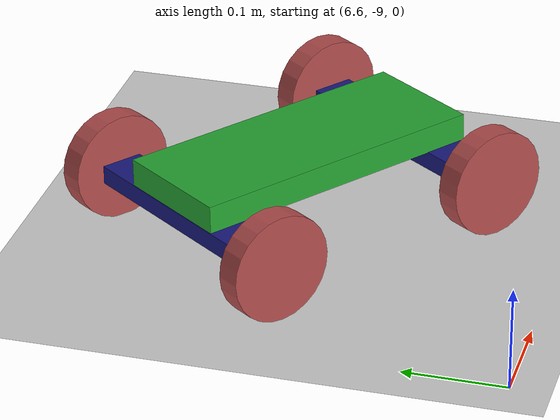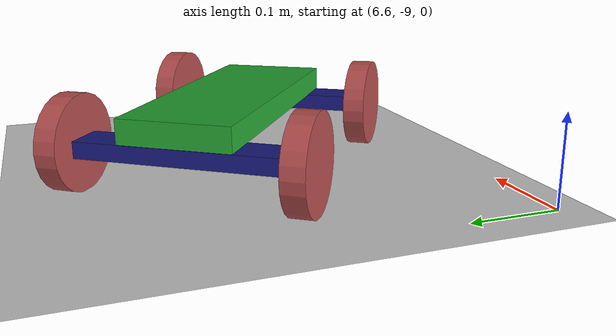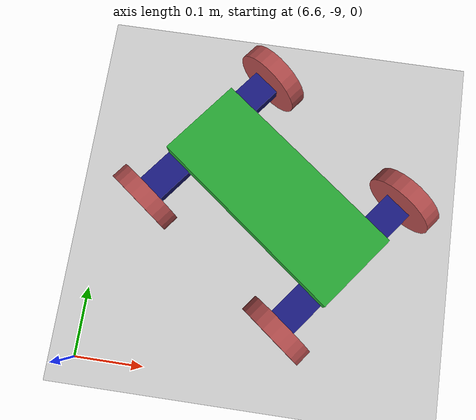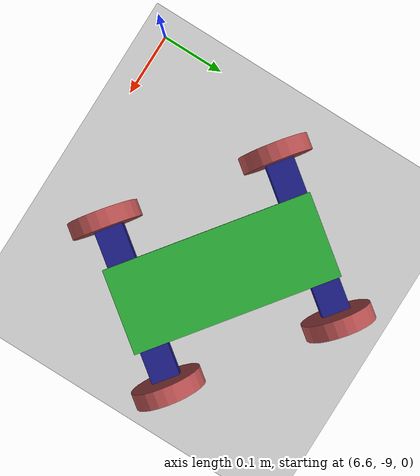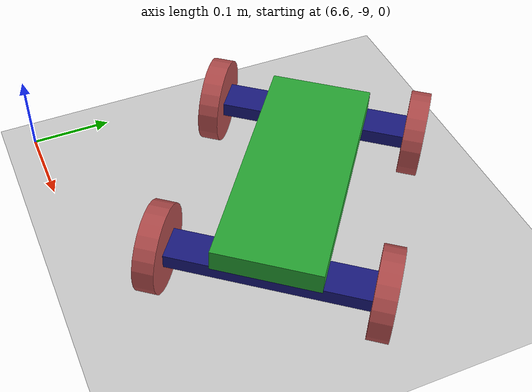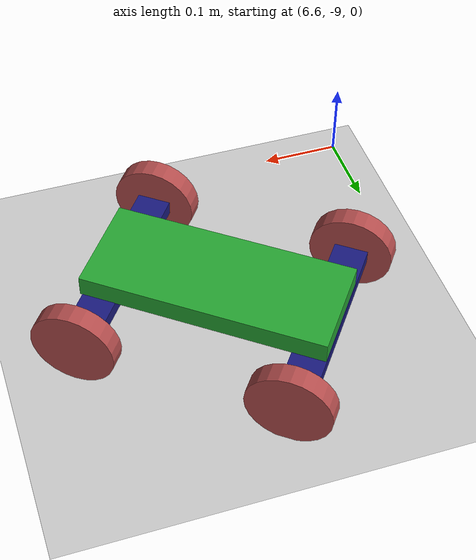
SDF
<sdf version="1.6">
 <world name="default">
  <model name="ground_plane">
   <static>1</static>
   <link name="link">
    <collision name="collision">
     <geometry><plane><normal>0 0 1</normal><size>100 100</size></plane></geometry>
     <surface><friction><ode><mu>100</mu><mu2>50</mu2></ode></friction></surface>
    </collision>
    <visual name="visual">
     <cast_shadows>0</cast_shadows>
     <geometry><plane><normal>0 0 1</normal><size>100 100</size></plane></geometry>
     <material>
      <script><uri>file://media/materials/scripts/gazebo.material</uri><name>Gazebo/Grey</name></script>
     </material>
    </visual>
   </link>
  </model>
  <model name="enwheer_0">
   <link name="link_0">
    <pose>0.246758 -0.006744 0.04096 0 -0 0</pose>
    <inertial>
     <mass>0.901262</mass>
     <inertia>
      <ixx>1.42341e-06</ixx>
      <ixy>0</ixy>
      <ixz>0</ixz>
      <iyy>8.35922e-06</iyy>
      <iyz>0</iyz>
      <izz>9.65174e-06</izz>
     </inertia>
    </inertial>
    <visual name="visual">
     <geometry><box><size>0.306687 0.125276 0.027544</size></box></geometry>
     <material>
      <lighting>1</lighting>
      <script><uri>file://media/materials/scripts/gazebo.material</uri><name>Gazebo/Green</name></script>
      <ambient>0.4 0.8 0.6 1</ambient>
      <diffuse>0.4 0.8 0.9 1</diffuse>
      <specular>0.41 0.81 0.81 1</specular>
      <emissive>0 0 0 1</emissive>
      <shader type="vertex"><normal_map>__default__</normal_map></shader>
     </material>
    </visual>
    <collision name="collision">
     <geometry><box><size>0.306687 0.125276 0.027544</size></box></geometry>
     <surface>
      <friction>
       <ode><mu>1</mu><mu2>1</mu2><fdir1>0 0 0</fdir1><slip1>0</slip1><slip2>0</slip2></ode>
       <torsional>
        <coefficient>1</coefficient>
        <patch_radius>0</patch_radius>
        <surface_radius>0</surface_radius>
        <use_patch_radius>1</use_patch_radius>
        <ode><slip>0</slip></ode>
       </torsional>
      </friction>
      <bounce><restitution_coefficient>0</restitution_coefficient><threshold>1e+06</threshold></bounce>
      <contact>
       <collide_without_contact>0</collide_without_contact>
       <collide_without_contact_bitmask>1</collide_without_contact_bitmask>
       <collide_bitmask>1</collide_bitmask>
       <ode>
        <soft_cfm>0</soft_cfm>
        <soft_erp>0.2</soft_erp>
        <kp>1e+13</kp>
        <kd>1</kd>
        <max_vel>0.01</max_vel>
        <min_depth>0</min_depth>
       </ode>
       <bullet>
        <split_impulse>1</split_impulse>
        <split_impulse_penetration_threshold>-0.01</split_impulse_penetration_threshold>
        <soft_cfm>0</soft_cfm>
        <soft_erp>0.2</soft_erp>
        <kp>1e+13</kp>
        <kd>1</kd>
       </bullet>
      </contact>
     </surface>
    </collision>
   </link>
   <link name="link_1">
    <pose>0.377424 -0.006572 0.033164 0 -0 0</pose>
    <inertial>
     <mass>1.82516e-05</mass>
     <inertia>
      <ixx>3.46685e-09</ixx>
      <ixy>0</ixy>
      <ixz>0</ixz>
      <iyy>3.46685e-09</iyy>
      <iyz>0</iyz>
      <izz>4.07787e-09</izz>
     </inertia>
    </inertial>
    <visual name="visual">
     <geometry><cylinder><radius>0.020977</radius><length>0.0103325</length></cylinder></geometry>
     <material>
      <lighting>1</lighting>
      <script><uri>file://media/materials/scripts/gazebo.material</uri><name>Gazebo/Grey</name></script>
      <ambient>0.3 0.3 0.3 1</ambient>
      <diffuse>0.7 0.7 0.7 1</diffuse>
      <specular>0.01 0.01 0.01 1</specular>
      <emissive>0 0 0 1</emissive>
      <shader type="vertex"><normal_map>__default__</normal_map></shader>
     </material>
    </visual>
    <collision name="collision">
     <geometry><cylinder><radius>0.020977</radius><length>0.010332</length></cylinder></geometry>
     <surface>
      <friction>
       <ode><mu>1</mu><mu2>1</mu2><fdir1>0 0 0</fdir1><slip1>0</slip1><slip2>0</slip2></ode>
       <torsional>
        <coefficient>1</coefficient>
        <patch_radius>0</patch_radius>
        <surface_radius>0</surface_radius>
        <use_patch_radius>1</use_patch_radius>
        <ode><slip>0</slip></ode>
       </torsional>
      </friction>
      <bounce><restitution_coefficient>0</restitution_coefficient><threshold>1e+06</threshold></bounce>
      <contact>
       <collide_without_contact>0</collide_without_contact>
       <collide_without_contact_bitmask>1</collide_without_contact_bitmask>
       <collide_bitmask>1</collide_bitmask>
       <ode>
        <soft_cfm>0</soft_cfm>
        <soft_erp>0.2</soft_erp>
        <kp>1e+13</kp>
        <kd>1</kd>
        <max_vel>0.01</max_vel>
        <min_depth>0</min_depth>
       </ode>
       <bullet>
        <split_impulse>1</split_impulse>
        <split_impulse_penetration_threshold>-0.01</split_impulse_penetration_threshold>
        <soft_cfm>0</soft_cfm>
        <soft_erp>0.2</soft_erp>
        <kp>1e+13</kp>
        <kd>1</kd>
       </bullet>
      </contact>
     </surface>
    </collision>
   </link>
   <model name="wheel">
    <link name="link_1_clone">
     <pose>0.966475 -0.011272 0.197727 0 -0 0</pose>
     <inertial>
      <mass>0.0900613</mass>
      <inertia>
       <ixx>6.585e-05</ixx>
       <ixy>0</ixy>
       <ixz>0</ixz>
       <iyy>5.861e-05</iyy>
       <iyz>0</iyz>
       <izz>7.429e-05</izz>
      </inertia>
     </inertial>
     <visual name="visual">
      <geometry><box><size>0.042286 0.233056 0.018284</size></box></geometry>
      <material>
       <lighting>1</lighting>
       <script><uri>file://media/materials/scripts/gazebo.material</uri><name>Gazebo/Grey</name></script>
       <ambient>0.1 0.1 0.5 1</ambient>
       <diffuse>0.1 0.1 0.5 1</diffuse>
       <specular>0.01 0.01 0.51 1</specular>
       <emissive>0 0 0 1</emissive>
       <shader type="vertex"><normal_map>__default__</normal_map></shader>
      </material>
     </visual>
     <collision name="collision">
      <geometry><box><size>0.042286 0.233056 0.018284</size></box></geometry>
      <surface>
       <friction>
        <ode><mu>1</mu><mu2>1</mu2><fdir1>0 0 0</fdir1><slip1>0</slip1><slip2>0</slip2></ode>
        <torsional>
         <coefficient>1</coefficient>
         <patch_radius>0</patch_radius>
         <surface_radius>0</surface_radius>
         <use_patch_radius>1</use_patch_radius>
         <ode><slip>0</slip></ode>
        </torsional>
       </friction>
       <bounce><restitution_coefficient>0</restitution_coefficient><threshold>1e+06</threshold></bounce>
       <contact>
        <collide_without_contact>0</collide_without_contact>
        <collide_without_contact_bitmask>1</collide_without_contact_bitmask>
        <collide_bitmask>1</collide_bitmask>
        <ode>
         <soft_cfm>0</soft_cfm>
         <soft_erp>0.2</soft_erp>
         <kp>1e+13</kp>
         <kd>1</kd>
         <max_vel>0.01</max_vel>
         <min_depth>0</min_depth>
        </ode>
        <bullet>
         <split_impulse>1</split_impulse>
         <split_impulse_penetration_threshold>-0.01</split_impulse_penetration_threshold>
         <soft_cfm>0</soft_cfm>
         <soft_erp>0.2</soft_erp>
         <kp>1e+13</kp>
         <kd>1</kd>
        </bullet>
       </contact>
      </surface>
     </collision>
    </link>
    <link name="link_2_clone_0">
     <pose>0.96771 0.116413 0.19965 -1.5707 0 0</pose>
     <inertial>
      <mass>0.0429199</mass>
      <inertia>
       <ixx>0.00072796</ixx>
       <ixy>0</ixy>
       <ixz>0</ixz>
       <iyy>0.00072796</iyy>
       <iyz>0</iyz>
       <izz>0.00118653</izz>
      </inertia>
     </inertial>
     <visual name="visual">
      <geometry><cylinder><radius>0.052724</radius><length>0.024467</length></cylinder></geometry>
      <material>
       <lighting>1</lighting>
       <script><uri>file://media/materials/scripts/gazebo.material</uri><name>Gazebo/Grey</name></script>
       <ambient>0.7 0.3 0.3 1</ambient>
       <diffuse>0.7 0.3 0.3 1</diffuse>
       <specular>0.6 0.01 0.01 1</specular>
       <emissive>0 0 0 1</emissive>
       <shader type="vertex"><normal_map>__default__</normal_map></shader>
      </material>
     </visual>
     <collision name="collision">
      <geometry><cylinder><radius>0.052724</radius><length>0.024779</length></cylinder></geometry>
      <surface>
       <friction>
        <ode><mu>1</mu><mu2>1</mu2><fdir1>0 0 0</fdir1><slip1>0</slip1><slip2>0</slip2></ode>
        <torsional>
         <coefficient>1</coefficient>
         <patch_radius>0</patch_radius>
         <surface_radius>0</surface_radius>
         <use_patch_radius>1</use_patch_radius>
         <ode><slip>0</slip></ode>
        </torsional>
       </friction>
       <bounce><restitution_coefficient>0</restitution_coefficient><threshold>1e+06</threshold></bounce>
       <contact>
        <collide_without_contact>0</collide_without_contact>
        <collide_without_contact_bitmask>1</collide_without_contact_bitmask>
        <collide_bitmask>1</collide_bitmask>
        <ode>
         <soft_cfm>0</soft_cfm>
         <soft_erp>0.2</soft_erp>
         <kp>1e+13</kp>
         <kd>1</kd>
         <max_vel>0.01</max_vel>
         <min_depth>0</min_depth>
        </ode>
        <bullet>
         <split_impulse>1</split_impulse>
         <split_impulse_penetration_threshold>-0.01</split_impulse_penetration_threshold>
         <soft_cfm>0</soft_cfm>
         <soft_erp>0.2</soft_erp>
         <kp>1e+13</kp>
         <kd>1</kd>
        </bullet>
       </contact>
      </surface>
     </collision>
    </link>
    <link name="link_2_clone_clone">
     <pose>0.967654 -0.140179 0.196376 1.5707 -0 0</pose>
     <inertial>
      <mass>0.0705144</mass>
      <inertia>
       <ixx>0.00161465</ixx>
       <ixy>0</ixy>
       <ixz>0</ixz>
       <iyy>0.00161465</iyy>
       <iyz>0</iyz>
       <izz>0.00250684</izz>
      </inertia>
     </inertial>
     <visual name="visual">
      <geometry><cylinder><radius>0.0527241</radius><length>0.024779</length></cylinder></geometry>
      <material>
       <lighting>1</lighting>
       <script><uri>file://media/materials/scripts/gazebo.material</uri><name>Gazebo/Grey</name></script>
       <ambient>0.7 0.3 0.3 1</ambient>
       <diffuse>0.7 0.3 0.3 1</diffuse>
       <specular>0.6 0.01 0.01 1</specular>
       <emissive>0 0 0 1</emissive>
       <shader type="vertex"><normal_map>__default__</normal_map></shader>
      </material>
     </visual>
     <collision name="collision">
      <geometry><cylinder><radius>0.052724</radius><length>0.024779</length></cylinder></geometry>
      <surface>
       <friction>
        <ode><mu>1</mu><mu2>1</mu2><fdir1>0 0 0</fdir1><slip1>0</slip1><slip2>0</slip2></ode>
        <torsional>
         <coefficient>1</coefficient>
         <patch_radius>0</patch_radius>
         <surface_radius>0</surface_radius>
         <use_patch_radius>1</use_patch_radius>
         <ode><slip>0</slip></ode>
        </torsional>
       </friction>
       <bounce><restitution_coefficient>0</restitution_coefficient><threshold>1e+06</threshold></bounce>
       <contact>
        <collide_without_contact>0</collide_without_contact>
        <collide_without_contact_bitmask>1</collide_without_contact_bitmask>
        <collide_bitmask>1</collide_bitmask>
        <ode>
         <soft_cfm>0</soft_cfm>
         <soft_erp>0.2</soft_erp>
         <kp>1e+13</kp>
         <kd>1</kd>
         <max_vel>0.01</max_vel>
         <min_depth>0</min_depth>
        </ode>
        <bullet>
         <split_impulse>1</split_impulse>
         <split_impulse_penetration_threshold>-0.01</split_impulse_penetration_threshold>
         <soft_cfm>0</soft_cfm>
         <soft_erp>0.2</soft_erp>
         <kp>1e+13</kp>
         <kd>1</kd>
        </bullet>
       </contact>
      </surface>
     </collision>
    </link>
    <joint name="link_1_clone_JOINT_14" type="revolute">
     <parent>link_1_clone</parent>
     <child>link_2_clone_clone</child>
     <axis>
      <xyz>0 0 1</xyz>
      <use_parent_model_frame>0</use_parent_model_frame>
      <limit>
       <lower>-1.79769e+308</lower>
       <upper>1.79769e+308</upper>
       <effort>-1</effort>
       <velocity>-1</velocity>
      </limit>
      <dynamics>
       <spring_reference>0</spring_reference>
       <spring_stiffness>0</spring_stiffness>
       <damping>0</damping>
       <friction>1</friction>
      </dynamics>
     </axis>
     <physics>
      <ode><limit><cfm>0</cfm><erp>0.2</erp></limit><suspension><cfm>0</cfm><erp>0.2</erp></suspension></ode>
     </physics>
    </joint>
    <joint name="link_1_clone_JOINT_15" type="revolute">
     <parent>link_1_clone</parent>
     <child>link_2_clone_0</child>
     <axis>
      <xyz>0 0 1</xyz>
      <use_parent_model_frame>0</use_parent_model_frame>
      <limit>
       <lower>-1.79769e+308</lower>
       <upper>1.79769e+308</upper>
       <effort>-1</effort>
       <velocity>-1</velocity>
      </limit>
      <dynamics>
       <spring_reference>0</spring_reference>
       <spring_stiffness>0</spring_stiffness>
       <damping>0</damping>
       <friction>1</friction>
      </dynamics>
     </axis>
     <physics>
      <ode><limit><cfm>0</cfm><erp>0.2</erp></limit><suspension><cfm>0</cfm><erp>0.2</erp></suspension></ode>
     </physics>
    </joint>
    <static>0</static>
    <pose>-0.590545 0.004638 -0.179239 0 -0 0</pose>
   </model>
   <model name="wheel_0">
    <link name="link_1_clone">
     <pose>0.966475 -0.011272 0.197727 0 -0 0</pose>
     <inertial>
      <mass>0.0900613</mass>
      <inertia>
       <ixx>6.585e-05</ixx>
       <ixy>0</ixy>
       <ixz>0</ixz>
       <iyy>5.861e-05</iyy>
       <iyz>0</iyz>
       <izz>7.429e-05</izz>
      </inertia>
     </inertial>
     <visual name="visual">
      <geometry><box><size>0.042286 0.233056 0.018284</size></box></geometry>
      <material>
       <lighting>1</lighting>
       <script><uri>file://media/materials/scripts/gazebo.material</uri><name>Gazebo/Grey</name></script>
       <ambient>0.1 0.1 0.5 1</ambient>
       <diffuse>0.1 0.1 0.5 1</diffuse>
       <specular>0.01 0.01 0.51 1</specular>
       <emissive>0 0 0 1</emissive>
       <shader type="vertex"><normal_map>__default__</normal_map></shader>
      </material>
     </visual>
     <collision name="collision">
      <geometry><box><size>0.042286 0.233056 0.018284</size></box></geometry>
      <surface>
       <friction>
        <ode><mu>1</mu><mu2>1</mu2><fdir1>0 0 0</fdir1><slip1>0</slip1><slip2>0</slip2></ode>
        <torsional>
         <coefficient>1</coefficient>
         <patch_radius>0</patch_radius>
         <surface_radius>0</surface_radius>
         <use_patch_radius>1</use_patch_radius>
         <ode><slip>0</slip></ode>
        </torsional>
       </friction>
       <bounce><restitution_coefficient>0</restitution_coefficient><threshold>1e+06</threshold></bounce>
       <contact>
        <collide_without_contact>0</collide_without_contact>
        <collide_without_contact_bitmask>1</collide_without_contact_bitmask>
        <collide_bitmask>1</collide_bitmask>
        <ode>
         <soft_cfm>0</soft_cfm>
         <soft_erp>0.2</soft_erp>
         <kp>1e+13</kp>
         <kd>1</kd>
         <max_vel>0.01</max_vel>
         <min_depth>0</min_depth>
        </ode>
        <bullet>
         <split_impulse>1</split_impulse>
         <split_impulse_penetration_threshold>-0.01</split_impulse_penetration_threshold>
         <soft_cfm>0</soft_cfm>
         <soft_erp>0.2</soft_erp>
         <kp>1e+13</kp>
         <kd>1</kd>
        </bullet>
       </contact>
      </surface>
     </collision>
    </link>
    <link name="link_2_clone_0">
     <pose>0.96771 0.116413 0.19965 -1.5707 0 0</pose>
     <inertial>
      <mass>0.0429199</mass>
      <inertia>
       <ixx>0.00072796</ixx>
       <ixy>0</ixy>
       <ixz>0</ixz>
       <iyy>0.00072796</iyy>
       <iyz>0</iyz>
       <izz>0.00118653</izz>
      </inertia>
     </inertial>
     <visual name="visual">
      <geometry><cylinder><radius>0.052724</radius><length>0.024467</length></cylinder></geometry>
      <material>
       <lighting>1</lighting>
       <script><uri>file://media/materials/scripts/gazebo.material</uri><name>Gazebo/Grey</name></script>
       <ambient>0.7 0.3 0.3 1</ambient>
       <diffuse>0.7 0.3 0.3 1</diffuse>
       <specular>0.6 0.01 0.01 1</specular>
       <emissive>0 0 0 1</emissive>
       <shader type="vertex"><normal_map>__default__</normal_map></shader>
      </material>
     </visual>
     <collision name="collision">
      <geometry><cylinder><radius>0.052724</radius><length>0.024779</length></cylinder></geometry>
      <surface>
       <friction>
        <ode><mu>1</mu><mu2>1</mu2><fdir1>0 0 0</fdir1><slip1>0</slip1><slip2>0</slip2></ode>
        <torsional>
         <coefficient>1</coefficient>
         <patch_radius>0</patch_radius>
         <surface_radius>0</surface_radius>
         <use_patch_radius>1</use_patch_radius>
         <ode><slip>0</slip></ode>
        </torsional>
       </friction>
       <bounce><restitution_coefficient>0</restitution_coefficient><threshold>1e+06</threshold></bounce>
       <contact>
        <collide_without_contact>0</collide_without_contact>
        <collide_without_contact_bitmask>1</collide_without_contact_bitmask>
        <collide_bitmask>1</collide_bitmask>
        <ode>
         <soft_cfm>0</soft_cfm>
         <soft_erp>0.2</soft_erp>
         <kp>1e+13</kp>
         <kd>1</kd>
         <max_vel>0.01</max_vel>
         <min_depth>0</min_depth>
        </ode>
        <bullet>
         <split_impulse>1</split_impulse>
         <split_impulse_penetration_threshold>-0.01</split_impulse_penetration_threshold>
         <soft_cfm>0</soft_cfm>
         <soft_erp>0.2</soft_erp>
         <kp>1e+13</kp>
         <kd>1</kd>
        </bullet>
       </contact>
      </surface>
     </collision>
    </link>
    <link name="link_2_clone_clone">
     <pose>0.967654 -0.140179 0.196376 1.5707 -0 0</pose>
     <inertial>
      <mass>0.0705144</mass>
      <inertia>
       <ixx>0.00161465</ixx>
       <ixy>0</ixy>
       <ixz>0</ixz>
       <iyy>0.00161465</iyy>
       <iyz>0</iyz>
       <izz>0.00250684</izz>
      </inertia>
     </inertial>
     <visual name="visual">
      <geometry><cylinder><radius>0.0527241</radius><length>0.024779</length></cylinder></geometry>
      <material>
       <lighting>1</lighting>
       <script><uri>file://media/materials/scripts/gazebo.material</uri><name>Gazebo/Grey</name></script>
       <ambient>0.7 0.3 0.3 1</ambient>
       <diffuse>0.7 0.3 0.3 1</diffuse>
       <specular>0.6 0.01 0.01 1</specular>
       <emissive>0 0 0 1</emissive>
       <shader type="vertex"><normal_map>__default__</normal_map></shader>
      </material>
     </visual>
     <collision name="collision">
      <geometry><cylinder><radius>0.052724</radius><length>0.024779</length></cylinder></geometry>
      <surface>
       <friction>
        <ode><mu>1</mu><mu2>1</mu2><fdir1>0 0 0</fdir1><slip1>0</slip1><slip2>0</slip2></ode>
        <torsional>
         <coefficient>1</coefficient>
         <patch_radius>0</patch_radius>
         <surface_radius>0</surface_radius>
         <use_patch_radius>1</use_patch_radius>
         <ode><slip>0</slip></ode>
        </torsional>
       </friction>
       <bounce><restitution_coefficient>0</restitution_coefficient><threshold>1e+06</threshold></bounce>
       <contact>
        <collide_without_contact>0</collide_without_contact>
        <collide_without_contact_bitmask>1</collide_without_contact_bitmask>
        <collide_bitmask>1</collide_bitmask>
        <ode>
         <soft_cfm>0</soft_cfm>
         <soft_erp>0.2</soft_erp>
         <kp>1e+13</kp>
         <kd>1</kd>
         <max_vel>0.01</max_vel>
         <min_depth>0</min_depth>
        </ode>
        <bullet>
         <split_impulse>1</split_impulse>
         <split_impulse_penetration_threshold>-0.01</split_impulse_penetration_threshold>
         <soft_cfm>0</soft_cfm>
         <soft_erp>0.2</soft_erp>
         <kp>1e+13</kp>
         <kd>1</kd>
        </bullet>
       </contact>
      </surface>
     </collision>
    </link>
    <joint name="link_1_clone_JOINT_14" type="revolute">
     <parent>link_1_clone</parent>
     <child>link_2_clone_clone</child>
     <axis>
      <xyz>0 0 1</xyz>
      <use_parent_model_frame>0</use_parent_model_frame>
      <limit>
       <lower>-1.79769e+308</lower>
       <upper>1.79769e+308</upper>
       <effort>-1</effort>
       <velocity>-1</velocity>
      </limit>
      <dynamics>
       <spring_reference>0</spring_reference>
       <spring_stiffness>0</spring_stiffness>
       <damping>0</damping>
       <friction>1</friction>
      </dynamics>
     </axis>
     <physics>
      <ode><limit><cfm>0</cfm><erp>0.2</erp></limit><suspension><cfm>0</cfm><erp>0.2</erp></suspension></ode>
     </physics>
    </joint>
    <joint name="link_1_clone_JOINT_15" type="revolute">
     <parent>link_1_clone</parent>
     <child>link_2_clone_0</child>
     <axis>
      <xyz>0 0 1</xyz>
      <use_parent_model_frame>0</use_parent_model_frame>
      <limit>
       <lower>-1.79769e+308</lower>
       <upper>1.79769e+308</upper>
       <effort>-1</effort>
       <velocity>-1</velocity>
      </limit>
      <dynamics>
       <spring_reference>0</spring_reference>
       <spring_stiffness>0</spring_stiffness>
       <damping>0</damping>
       <friction>1</friction>
      </dynamics>
     </axis>
     <physics>
      <ode><limit><cfm>0</cfm><erp>0.2</erp></limit><suspension><cfm>0</cfm><erp>0.2</erp></suspension></ode>
     </physics>
    </joint>
    <static>0</static>
    <pose>-0.85257 0.002512 -0.179549 0 -0 0</pose>
   </model>
   <joint name="link_0_JOINT_4" type="revolute">
    <parent>link_0</parent>
    <child>link_1</child>
    <axis>
     <xyz>0 0 -1</xyz>
     <use_parent_model_frame>0</use_parent_model_frame>
     <limit><lower>-0.38</lower><upper>0.38</upper><effort>-1</effort><velocity>-1</velocity></limit>
     <dynamics>
      <spring_reference>0</spring_reference>
      <spring_stiffness>0</spring_stiffness>
      <damping>0</damping>
      <friction>2</friction>
     </dynamics>
    </axis>
    <physics>
     <ode><limit><cfm>0</cfm><erp>0</erp></limit><suspension><cfm>0</cfm><erp>0</erp></suspension></ode>
    </physics>
   </joint>
   <joint name="link_0_JOINT_6" type="fixed">
    <parent>link_0</parent>
    <child>wheel_0::link_1_clone</child>
    <physics>
     <ode><limit><cfm>0</cfm><erp>0.2</erp></limit><suspension><cfm>0</cfm><erp>0.2</erp></suspension></ode>
    </physics>
   </joint>
   <joint name="link_1_clone_JOINT_5" type="fixed">
    <parent>wheel::link_1_clone</parent>
    <child>link_1</child>
    <physics>
     <ode><limit><cfm>0</cfm><erp>0.2</erp></limit><suspension><cfm>0</cfm><erp>0.2</erp></suspension></ode>
    </physics>
   </joint>
   <static>0</static>
   <pose>6.66131 -8.58436 0.031906 -0.017119 -0.006833 -0.649405</pose>
  </model>
 </world>
</sdf>
